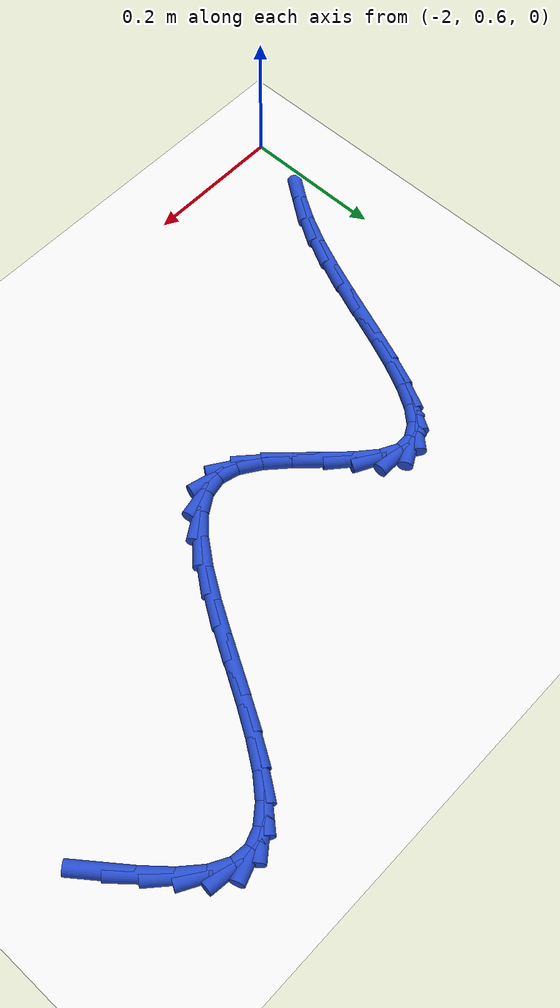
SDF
<sdf version="1.6">
 <world name="default">
  <model name="ground_plane">
   <static>1</static>
   <link name="link">
    <collision name="collision">
     <geometry><plane><normal>0 0 1</normal><size>100 100</size></plane></geometry>
     <surface><friction><ode><mu>100</mu><mu2>50</mu2></ode></friction></surface>
    </collision>
    <visual name="visual">
     <cast_shadows>0</cast_shadows>
     <geometry><plane><normal>0 0 1</normal><size>100 100</size></plane></geometry>
     <material>
      <script><uri>file://media/materials/scripts/gazebo.material</uri><name>Gazebo/WhiteGlow</name></script>
     </material>
    </visual>
   </link>
  </model>
  <model name="line">
   <link name="link_56">
    <pose>-1.1109058189542786 1.1937629075244978 0.01 0 1.57 -0.9119094258967487</pose>
    <collision name="collision">
     <geometry><cylinder><radius>0.01</radius><length>0.08</length></cylinder></geometry>
    </collision>
    <visual name="visual">
     <material>
      <script><name>Gazebo/Blue</name><uri>file://media/materials/scripts/gazebo.material</uri></script>
     </material>
     <geometry><cylinder><radius>0.01</radius><length>0.08</length></cylinder></geometry>
    </visual>
   </link>
   <link name="link_57">
    <pose>-1.1374808088028208 1.2280832023316068 0.01 0 1.57 -0.8528505898445067</pose>
    <collision name="collision">
     <geometry><cylinder><radius>0.01</radius><length>0.08</length></cylinder></geometry>
    </collision>
    <visual name="visual">
     <material>
      <script><name>Gazebo/Blue</name><uri>file://media/materials/scripts/gazebo.material</uri></script>
     </material>
     <geometry><cylinder><radius>0.01</radius><length>0.08</length></cylinder></geometry>
    </visual>
   </link>
   <link name="link_58">
    <pose>-1.1638452762139737 1.258267839527521 0.01 0 1.57 -0.7361170148990444</pose>
    <collision name="collision">
     <geometry><cylinder><radius>0.01</radius><length>0.08</length></cylinder></geometry>
    </collision>
    <visual name="visual">
     <material>
      <script><name>Gazebo/Blue</name><uri>file://media/materials/scripts/gazebo.material</uri></script>
     </material>
     <geometry><cylinder><radius>0.01</radius><length>0.08</length></cylinder></geometry>
    </visual>
   </link>
   <link name="link_59">
    <pose>-1.189876759929562 1.2818522153398253 0.01 0 1.57 -0.5163306370183786</pose>
    <collision name="collision">
     <geometry><cylinder><radius>0.01</radius><length>0.08</length></cylinder></geometry>
    </collision>
    <visual name="visual">
     <material>
      <script><name>Gazebo/Blue</name><uri>file://media/materials/scripts/gazebo.material</uri></script>
     </material>
     <geometry><cylinder><radius>0.01</radius><length>0.08</length></cylinder></geometry>
    </visual>
   </link>
   <link name="link_60">
    <pose>-1.2154527986914068 1.2963717259960996 0.01 0 1.57 -0.12291142269522828</pose>
    <collision name="collision">
     <geometry><cylinder><radius>0.01</radius><length>0.08</length></cylinder></geometry>
    </collision>
    <visual name="visual">
     <material>
      <script><name>Gazebo/Blue</name><uri>file://media/materials/scripts/gazebo.material</uri></script>
     </material>
     <geometry><cylinder><radius>0.01</radius><length>0.08</length></cylinder></geometry>
    </visual>
   </link>
   <link name="link_61">
    <pose>-1.2404562809774393 1.2994605095730474 0.01 0 1.57 0.3383796253195679</pose>
    <collision name="collision">
     <geometry><cylinder><radius>0.01</radius><length>0.08</length></cylinder></geometry>
    </collision>
    <visual name="visual">
     <material>
      <script><name>Gazebo/Blue</name><uri>file://media/materials/scripts/gazebo.material</uri></script>
     </material>
     <geometry><cylinder><radius>0.01</radius><length>0.08</length></cylinder></geometry>
    </visual>
   </link>
   <link name="link_62">
    <pose>-1.2648844759614106 1.2908638664887588 0.01 0 1.57 0.6577917672541319</pose>
    <collision name="collision">
     <geometry><cylinder><radius>0.01</radius><length>0.08</length></cylinder></geometry>
    </collision>
    <visual name="visual">
     <material>
      <script><name>Gazebo/Blue</name><uri>file://media/materials/scripts/gazebo.material</uri></script>
     </material>
     <geometry><cylinder><radius>0.01</radius><length>0.08</length></cylinder></geometry>
    </visual>
   </link>
   <link name="link_63">
    <pose>-1.2888444180909684 1.2723530711334547 0.01 0 1.57 0.8444985779872175</pose>
    <collision name="collision">
     <geometry><cylinder><radius>0.01</radius><length>0.08</length></cylinder></geometry>
    </collision>
    <visual name="visual">
     <material>
      <script><name>Gazebo/Blue</name><uri>file://media/materials/scripts/gazebo.material</uri></script>
     </material>
     <geometry><cylinder><radius>0.01</radius><length>0.08</length></cylinder></geometry>
    </visual>
   </link>
   <link name="link_64">
    <pose>-1.3124475679745524 1.2457810930113358 0.01 0 1.57 0.9516911831520811</pose>
    <collision name="collision">
     <geometry><cylinder><radius>0.01</radius><length>0.08</length></cylinder></geometry>
    </collision>
    <visual name="visual">
     <material>
      <script><name>Gazebo/Blue</name><uri>file://media/materials/scripts/gazebo.material</uri></script>
     </material>
     <geometry><cylinder><radius>0.01</radius><length>0.08</length></cylinder></geometry>
    </visual>
   </link>
   <link name="link_65">
    <pose>-1.3358053862206036 1.2130009016266026 0.01 0 1.57 1.0119201452212447</pose>
    <collision name="collision">
     <geometry><cylinder><radius>0.01</radius><length>0.08</length></cylinder></geometry>
    </collision>
    <visual name="visual">
     <material>
      <script><name>Gazebo/Blue</name><uri>file://media/materials/scripts/gazebo.material</uri></script>
     </material>
     <geometry><cylinder><radius>0.01</radius><length>0.08</length></cylinder></geometry>
    </visual>
   </link>
   <link name="link_66">
    <pose>-1.359029333437563 1.1758654664834554 0.01 0 1.57 1.041225984298813</pose>
    <collision name="collision">
     <geometry><cylinder><radius>0.01</radius><length>0.08</length></cylinder></geometry>
    </collision>
    <visual name="visual">
     <material>
      <script><name>Gazebo/Blue</name><uri>file://media/materials/scripts/gazebo.material</uri></script>
     </material>
     <geometry><cylinder><radius>0.01</radius><length>0.08</length></cylinder></geometry>
    </visual>
   </link>
   <link name="link_67">
    <pose>-1.3822308702338697 1.1362277570860948 0.01 0 1.57 1.0466230804831769</pose>
    <collision name="collision">
     <geometry><cylinder><radius>0.01</radius><length>0.08</length></cylinder></geometry>
    </collision>
    <visual name="visual">
     <material>
      <script><name>Gazebo/Blue</name><uri>file://media/materials/scripts/gazebo.material</uri></script>
     </material>
     <geometry><cylinder><radius>0.01</radius><length>0.08</length></cylinder></geometry>
    </visual>
   </link>
   <link name="link_68">
    <pose>-1.4055214572179646 1.0959407429387202 0.01 0 1.57 1.0296041737354378</pose>
    <collision name="collision">
     <geometry><cylinder><radius>0.01</radius><length>0.08</length></cylinder></geometry>
    </collision>
    <visual name="visual">
     <material>
      <script><name>Gazebo/Blue</name><uri>file://media/materials/scripts/gazebo.material</uri></script>
     </material>
     <geometry><cylinder><radius>0.01</radius><length>0.08</length></cylinder></geometry>
    </visual>
   </link>
   <link name="link_69">
    <pose>-1.4290125549982882 1.056857393545534 0.01 0 1.57 0.9869316538479238</pose>
    <collision name="collision">
     <geometry><cylinder><radius>0.01</radius><length>0.08</length></cylinder></geometry>
    </collision>
    <visual name="visual">
     <material>
      <script><name>Gazebo/Blue</name><uri>file://media/materials/scripts/gazebo.material</uri></script>
     </material>
     <geometry><cylinder><radius>0.01</radius><length>0.08</length></cylinder></geometry>
    </visual>
   </link>
   <link name="link_70">
    <pose>-1.4528156241832806 1.0208306784107346 0.01 0 1.57 0.9092666990032872</pose>
    <collision name="collision">
     <geometry><cylinder><radius>0.01</radius><length>0.08</length></cylinder></geometry>
    </collision>
    <visual name="visual">
     <material>
      <script><name>Gazebo/Blue</name><uri>file://media/materials/scripts/gazebo.material</uri></script>
     </material>
     <geometry><cylinder><radius>0.01</radius><length>0.08</length></cylinder></geometry>
    </visual>
   </link>
   <link name="link_71">
    <pose>-1.4770421253813826 0.989713567038524 0.01 0 1.57 0.7771147736126308</pose>
    <collision name="collision">
     <geometry><cylinder><radius>0.01</radius><length>0.08</length></cylinder></geometry>
    </collision>
    <visual name="visual">
     <material>
      <script><name>Gazebo/Blue</name><uri>file://media/materials/scripts/gazebo.material</uri></script>
     </material>
     <geometry><cylinder><radius>0.01</radius><length>0.08</length></cylinder></geometry>
    </visual>
   </link>
   <link name="link_72">
    <pose>-1.5018035192010344 0.9653590289331014 0.01 0 1.57 0.5546030791723394</pose>
    <collision name="collision">
     <geometry><cylinder><radius>0.01</radius><length>0.08</length></cylinder></geometry>
    </collision>
    <visual name="visual">
     <material>
      <script><name>Gazebo/Blue</name><uri>file://media/materials/scripts/gazebo.material</uri></script>
     </material>
     <geometry><cylinder><radius>0.01</radius><length>0.08</length></cylinder></geometry>
    </visual>
   </link>
   <link name="link_73">
    <pose>-1.5272112662506758 0.949620033598668 0.01 0 1.57 0.1987684962341407</pose>
    <collision name="collision">
     <geometry><cylinder><radius>0.01</radius><length>0.08</length></cylinder></geometry>
    </collision>
    <visual name="visual">
     <material>
      <script><name>Gazebo/Blue</name><uri>file://media/materials/scripts/gazebo.material</uri></script>
     </material>
     <geometry><cylinder><radius>0.01</radius><length>0.08</length></cylinder></geometry>
    </visual>
   </link>
   <link name="link_74">
    <pose>-1.5533768271387478 0.944349550539424 0.01 0 1.57 -0.25267067667398196</pose>
    <collision name="collision">
     <geometry><cylinder><radius>0.01</radius><length>0.08</length></cylinder></geometry>
    </collision>
    <visual name="visual">
     <material>
      <script><name>Gazebo/Blue</name><uri>file://media/materials/scripts/gazebo.material</uri></script>
     </material>
     <geometry><cylinder><radius>0.01</radius><length>0.08</length></cylinder></geometry>
    </visual>
   </link>
   <link name="link_75">
    <pose>-1.580404361320134 0.9513277537171455 0.01 0 1.57 -0.5859018521733876</pose>
    <collision name="collision">
     <geometry><cylinder><radius>0.01</radius><length>0.08</length></cylinder></geometry>
    </collision>
    <visual name="visual">
     <material>
      <script><name>Gazebo/Blue</name><uri>file://media/materials/scripts/gazebo.material</uri></script>
     </material>
     <geometry><cylinder><radius>0.01</radius><length>0.08</length></cylinder></geometry>
    </visual>
   </link>
   <link name="link_76">
    <pose>-1.6081369879580605 0.9697321366434754 0.01 0 1.57 -0.7444323996549913</pose>
    <collision name="collision">
     <geometry><cylinder><radius>0.01</radius><length>0.08</length></cylinder></geometry>
    </collision>
    <visual name="visual">
     <material>
      <script><name>Gazebo/Blue</name><uri>file://media/materials/scripts/gazebo.material</uri></script>
     </material>
     <geometry><cylinder><radius>0.01</radius><length>0.08</length></cylinder></geometry>
    </visual>
   </link>
   <link name="link_77">
    <pose>-1.636091351802961 0.9954851069341404 0.01 0 1.57 -0.8056904832120765</pose>
    <collision name="collision">
     <geometry><cylinder><radius>0.01</radius><length>0.08</length></cylinder></geometry>
    </collision>
    <visual name="visual">
     <material>
      <script><name>Gazebo/Blue</name><uri>file://media/materials/scripts/gazebo.material</uri></script>
     </material>
     <geometry><cylinder><radius>0.01</radius><length>0.08</length></cylinder></geometry>
    </visual>
   </link>
   <link name="link_78">
    <pose>-1.6637635040354763 1.0243037457352875 0.01 0 1.57 -0.7985269934080303</pose>
    <collision name="collision">
     <geometry><cylinder><radius>0.01</radius><length>0.08</length></cylinder></geometry>
    </collision>
    <visual name="visual">
     <material>
      <script><name>Gazebo/Blue</name><uri>file://media/materials/scripts/gazebo.material</uri></script>
     </material>
     <geometry><cylinder><radius>0.01</radius><length>0.08</length></cylinder></geometry>
    </visual>
   </link>
   <link name="link_79">
    <pose>-1.6906494958362448 1.0519051341930603 0.01 0 1.57 -0.7122610146106904</pose>
    <collision name="collision">
     <geometry><cylinder><radius>0.01</radius><length>0.08</length></cylinder></geometry>
    </collision>
    <visual name="visual">
     <material>
      <script><name>Gazebo/Blue</name><uri>file://media/materials/scripts/gazebo.material</uri></script>
     </material>
     <geometry><cylinder><radius>0.01</radius><length>0.08</length></cylinder></geometry>
    </visual>
   </link>
   <link name="link_80">
    <pose>-1.7162453783859069 1.0740063534536048 0.01 0 1.57 -0.47786942424556045</pose>
    <collision name="collision">
     <geometry><cylinder><radius>0.01</radius><length>0.08</length></cylinder></geometry>
    </collision>
    <visual name="visual">
     <material>
      <script><name>Gazebo/Blue</name><uri>file://media/materials/scripts/gazebo.material</uri></script>
     </material>
     <geometry><cylinder><radius>0.01</radius><length>0.08</length></cylinder></geometry>
    </visual>
   </link>
   <link name="link_81">
    <pose>-1.7400485741656975 1.0863341666729327 0.01 0 1.57 -0.0006216687803723049</pose>
    <collision name="collision">
     <geometry><cylinder><radius>0.01</radius><length>0.08</length></cylinder></geometry>
    </collision>
    <visual name="visual">
     <material>
      <script><name>Gazebo/Blue</name><uri>file://media/materials/scripts/gazebo.material</uri></script>
     </material>
     <geometry><cylinder><radius>0.01</radius><length>0.08</length></cylinder></geometry>
    </visual>
   </link>
   <link name="link_82">
    <pose>-1.7618018655303034 1.0863476900167865 0.01 0 1.57 0.5081333215273581</pose>
    <collision name="collision">
     <geometry><cylinder><radius>0.01</radius><length>0.08</length></cylinder></geometry>
    </collision>
    <visual name="visual">
     <material>
      <script><name>Gazebo/Blue</name><uri>file://media/materials/scripts/gazebo.material</uri></script>
     </material>
     <geometry><cylinder><radius>0.01</radius><length>0.08</length></cylinder></geometry>
    </visual>
   </link>
   <link name="link_83">
    <pose>-1.7817747093477132 1.0752246027779542 0.01 0 1.57 0.8382693096928875</pose>
    <collision name="collision">
     <geometry><cylinder><radius>0.01</radius><length>0.08</length></cylinder></geometry>
    </collision>
    <visual name="visual">
     <material>
      <script><name>Gazebo/Blue</name><uri>file://media/materials/scripts/gazebo.material</uri></script>
     </material>
     <geometry><cylinder><radius>0.01</radius><length>0.08</length></cylinder></geometry>
    </visual>
   </link>
   <link name="link_84">
    <pose>-1.8003047153673104 1.0546237747859866 0.01 0 1.57 1.020783222762101</pose>
    <collision name="collision">
     <geometry><cylinder><radius>0.01</radius><length>0.08</length></cylinder></geometry>
    </collision>
    <visual name="visual">
     <material>
      <script><name>Gazebo/Blue</name><uri>file://media/materials/scripts/gazebo.material</uri></script>
     </material>
     <geometry><cylinder><radius>0.01</radius><length>0.08</length></cylinder></geometry>
    </visual>
   </link>
   <link name="link_85">
    <pose>-1.817729493338477 1.0262040758704318 0.01 0 1.57 1.1218928298321698</pose>
    <collision name="collision">
     <geometry><cylinder><radius>0.01</radius><length>0.08</length></cylinder></geometry>
    </collision>
    <visual name="visual">
     <material>
      <script><name>Gazebo/Blue</name><uri>file://media/materials/scripts/gazebo.material</uri></script>
     </material>
     <geometry><cylinder><radius>0.01</radius><length>0.08</length></cylinder></geometry>
    </visual>
   </link>
   <link name="link_86">
    <pose>-1.8343866530105966 0.9916243758608414 0.01 0 1.57 1.1772383201477556</pose>
    <collision name="collision">
     <geometry><cylinder><radius>0.01</radius><length>0.08</length></cylinder></geometry>
    </collision>
    <visual name="visual">
     <material>
      <script><name>Gazebo/Blue</name><uri>file://media/materials/scripts/gazebo.material</uri></script>
     </material>
     <geometry><cylinder><radius>0.01</radius><length>0.08</length></cylinder></geometry>
    </visual>
   </link>
   <link name="link_87">
    <pose>-1.8506138041330522 0.9525435445867643 0.01 0 1.57 1.203404621292283</pose>
    <collision name="collision">
     <geometry><cylinder><radius>0.01</radius><length>0.08</length></cylinder></geometry>
    </collision>
    <visual name="visual">
     <material>
      <script><name>Gazebo/Blue</name><uri>file://media/materials/scripts/gazebo.material</uri></script>
     </material>
     <geometry><cylinder><radius>0.01</radius><length>0.08</length></cylinder></geometry>
    </visual>
   </link>
   <link name="link_88">
    <pose>-1.866748556455226 0.9106204518777508 0.01 0 1.57 1.2076594680621806</pose>
    <collision name="collision">
     <geometry><cylinder><radius>0.01</radius><length>0.08</length></cylinder></geometry>
    </collision>
    <visual name="visual">
     <material>
      <script><name>Gazebo/Blue</name><uri>file://media/materials/scripts/gazebo.material</uri></script>
     </material>
     <geometry><cylinder><radius>0.01</radius><length>0.08</length></cylinder></geometry>
    </visual>
   </link>
   <link name="link_89">
    <pose>-1.8831285197265029 0.8675139675633505 0.01 0 1.57 1.1921034949116323</pose>
    <collision name="collision">
     <geometry><cylinder><radius>0.01</radius><length>0.08</length></cylinder></geometry>
    </collision>
    <visual name="visual">
     <material>
      <script><name>Gazebo/Blue</name><uri>file://media/materials/scripts/gazebo.material</uri></script>
     </material>
     <geometry><cylinder><radius>0.01</radius><length>0.08</length></cylinder></geometry>
    </visual>
   </link>
   <link name="link_90">
    <pose>-1.9000913036962643 0.8248829614731141 0.01 0 1.57 1.1549520288935948</pose>
    <collision name="collision">
     <geometry><cylinder><radius>0.01</radius><length>0.08</length></cylinder></geometry>
    </collision>
    <visual name="visual">
     <material>
      <script><name>Gazebo/Blue</name><uri>file://media/materials/scripts/gazebo.material</uri></script>
     </material>
     <geometry><cylinder><radius>0.01</radius><length>0.08</length></cylinder></geometry>
    </visual>
   </link>
   <link name="link_91">
    <pose>-1.9179745181138932 0.7843863034365902 0.01 0 1.57 1.0908350925797</pose>
    <collision name="collision">
     <geometry><cylinder><radius>0.01</radius><length>0.08</length></cylinder></geometry>
    </collision>
    <visual name="visual">
     <material>
      <script><name>Gazebo/Blue</name><uri>file://media/materials/scripts/gazebo.material</uri></script>
     </material>
     <geometry><cylinder><radius>0.01</radius><length>0.08</length></cylinder></geometry>
    </visual>
   </link>
   <link name="link_92">
    <pose>-1.9371034546434747 0.74763957156001 0.01 0 1.57 1.0117653254016614</pose>
    <collision name="collision">
     <geometry><cylinder><radius>0.01</radius><length>0.08</length></cylinder></geometry>
    </collision>
    <visual name="visual">
     <material>
      <script><name>Gazebo/Blue</name><uri>file://media/materials/scripts/gazebo.material</uri></script>
     </material>
     <geometry><cylinder><radius>0.01</radius><length>0.08</length></cylinder></geometry>
    </visual>
   </link>
   <link name="link_93">
    <pose>-1.957469565693427 0.7150850709660724 0.01 0 1.57 0.9421599976755343</pose>
    <collision name="collision">
     <geometry><cylinder><radius>0.01</radius><length>0.08</length></cylinder></geometry>
    </collision>
    <visual name="visual">
     <material>
      <script><name>Gazebo/Blue</name><uri>file://media/materials/scripts/gazebo.material</uri></script>
     </material>
     <geometry><cylinder><radius>0.01</radius><length>0.08</length></cylinder></geometry>
    </visual>
   </link>
  </model>
 </world>
</sdf>
